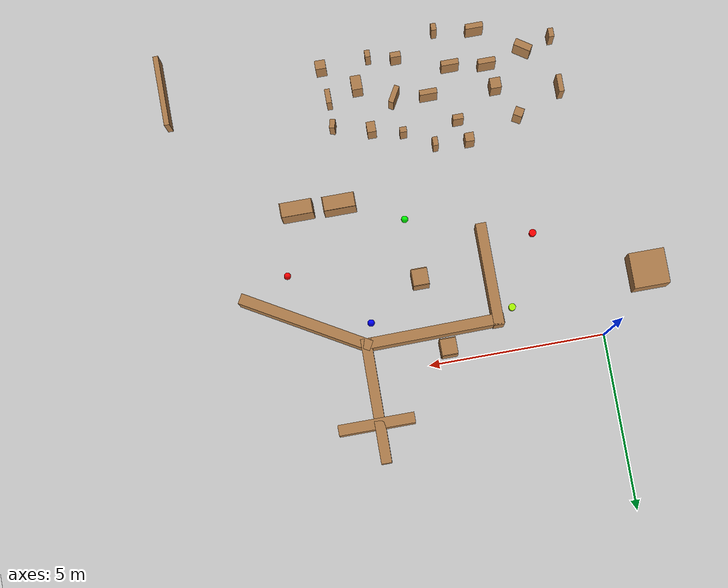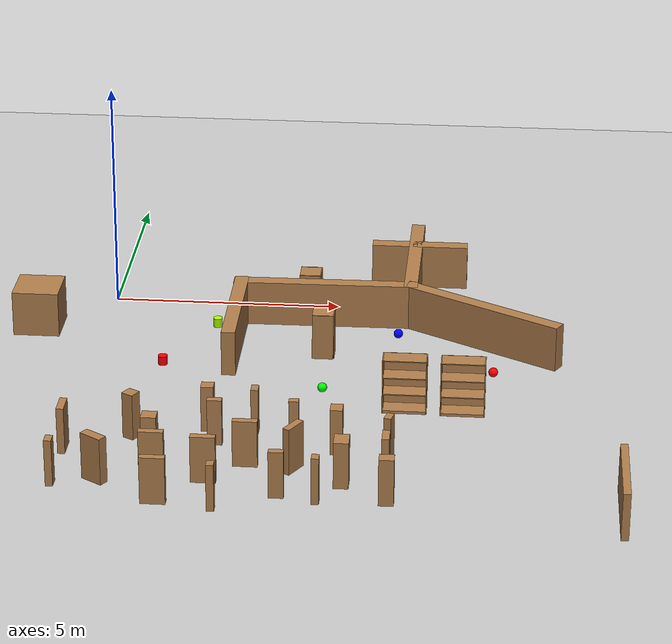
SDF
<sdf version="1.7">
 <world name="default">
  <model name="ground_plane">
   <pose>0 0 0 0 -0 0.716815</pose>
   <static>1</static>
   <link name="link">
    <collision name="collision">
     <geometry><plane><normal>0 0 1</normal><size>100 100</size></plane></geometry>
     <surface><friction><ode><mu>100</mu><mu2>50</mu2></ode></friction></surface>
    </collision>
    <visual name="visual">
     <cast_shadows>0</cast_shadows>
     <geometry><plane><normal>0 0 1</normal><size>100 100</size></plane></geometry>
     <material>
      <script><uri>file://media/materials/scripts/gazebo.material</uri><name>Gazebo/Grey</name></script>
     </material>
    </visual>
   </link>
  </model>
  <model name="t5">
   <pose>3.29174 -8.44012 0 0 -0 0</pose>
   <link name="Wall_0">
    <collision name="Wall_0_Collision">
     <geometry><box><size>0.5 0.15 1</size></box></geometry>
     <pose>0 0 0.5 0 -0 0</pose>
    </collision>
    <visual name="Wall_0_Visual">
     <pose>0 0 0.5 0 -0 0</pose>
     <geometry><box><size>0.5 0.15 1</size></box></geometry>
     <material>
      <script><uri>file://media/materials/scripts/gazebo.material</uri><name>Gazebo/Wood</name></script>
      <ambient>1 1 1 1</ambient>
     </material>
     <meta><layer>0</layer></meta>
    </visual>
    <pose>0.390596 0.875877 0 0 -0 0</pose>
   </link>
   <link name="Wall_101">
    <collision name="Wall_101_Collision">
     <geometry><box><size>0.3 0.25 1</size></box></geometry>
     <pose>0 0 0.5 0 -0 0</pose>
    </collision>
    <visual name="Wall_101_Visual">
     <pose>0 0 0.5 0 -0 0</pose>
     <geometry><box><size>0.3 0.25 1</size></box></geometry>
     <material>
      <script><uri>file://media/materials/scripts/gazebo.material</uri><name>Gazebo/Wood</name></script>
      <ambient>1 1 1 1</ambient>
     </material>
     <meta><layer>0</layer></meta>
    </visual>
    <pose>3.25747 -0.423314 0 0 -0 0</pose>
   </link>
   <link name="Wall_103">
    <collision name="Wall_103_Collision">
     <geometry><box><size>0.3 0.25 1</size></box></geometry>
     <pose>0 0 0.5 0 -0 0</pose>
    </collision>
    <visual name="Wall_103_Visual">
     <pose>0 0 0.5 0 -0 0</pose>
     <geometry><box><size>0.3 0.25 1</size></box></geometry>
     <material>
      <script><uri>file://media/materials/scripts/gazebo.material</uri><name>Gazebo/Wood</name></script>
      <ambient>1 1 1 1</ambient>
     </material>
     <meta><layer>0</layer></meta>
    </visual>
    <pose>2.15255 1.5852 0 0 -0 -1.5708</pose>
   </link>
   <link name="Wall_105">
    <collision name="Wall_105_Collision">
     <geometry><box><size>0.4 0.15 1</size></box></geometry>
     <pose>0 0 0.5 0 -0 0</pose>
    </collision>
    <visual name="Wall_105_Visual">
     <pose>0 0 0.5 0 -0 0</pose>
     <geometry><box><size>0.4 0.15 1</size></box></geometry>
     <material>
      <script><uri>file://media/materials/scripts/gazebo.material</uri><name>Gazebo/Wood</name></script>
      <ambient>1 1 1 1</ambient>
     </material>
     <meta><layer>0</layer></meta>
    </visual>
    <pose>3.19281 0.500574 0 0 -0 -1.5708</pose>
   </link>
   <link name="Wall_21">
    <collision name="Wall_21_Collision">
     <geometry><box><size>0.500017 0.2 1</size></box></geometry>
     <pose>0 0 0.5 0 -0 0</pose>
    </collision>
    <visual name="Wall_21_Visual">
     <pose>0 0 0.5 0 -0 0</pose>
     <geometry><box><size>0.500017 0.2 1</size></box></geometry>
     <material>
      <script><uri>file://media/materials/scripts/gazebo.material</uri><name>Gazebo/Wood</name></script>
      <ambient>1 1 1 1</ambient>
     </material>
     <meta><layer>0</layer></meta>
    </visual>
    <pose>-2.48871 0.02876 0 0 -0 -0.586607</pose>
   </link>
   <link name="Wall_36">
    <collision name="Wall_36_Collision">
     <geometry><box><size>0.26 0.25 1</size></box></geometry>
     <pose>0 0 0.5 0 -0 0</pose>
    </collision>
    <visual name="Wall_36_Visual">
     <pose>0 0 0.5 0 -0 0</pose>
     <geometry><box><size>0.26 0.25 1</size></box></geometry>
     <material>
      <script><uri>file://media/materials/scripts/gazebo.material</uri><name>Gazebo/Wood</name></script>
      <ambient>1 1 1 1</ambient>
     </material>
     <meta><layer>0</layer></meta>
    </visual>
    <pose>-0.523693 2.35884 0 0 -0 0</pose>
   </link>
   <link name="Wall_38">
    <collision name="Wall_38_Collision">
     <geometry><box><size>0.26 0.25 1</size></box></geometry>
     <pose>0 0 0.5 0 -0 0</pose>
    </collision>
    <visual name="Wall_38_Visual">
     <pose>0 0 0.5 0 -0 0</pose>
     <geometry><box><size>0.26 0.25 1</size></box></geometry>
     <material>
      <script><uri>file://media/materials/scripts/gazebo.material</uri><name>Gazebo/Wood</name></script>
      <ambient>1 1 1 1</ambient>
     </material>
     <meta><layer>0</layer></meta>
    </visual>
    <pose>-2.02428 1.89989 0 0 -0 -0.523599</pose>
   </link>
   <link name="Wall_54">
    <collision name="Wall_54_Collision">
     <geometry><box><size>0.5 0.15 1</size></box></geometry>
     <pose>0 0 0.5 0 -0 0</pose>
    </collision>
    <visual name="Wall_54_Visual">
     <pose>0 0 0.5 0 -0 0</pose>
     <geometry><box><size>0.5 0.15 1</size></box></geometry>
     <material>
      <script><uri>file://media/materials/scripts/gazebo.material</uri><name>Gazebo/Wood</name></script>
      <ambient>1 1 1 1</ambient>
     </material>
     <meta><layer>0</layer></meta>
    </visual>
    <pose>-1.2248 -0.767096 0 0 -0 0</pose>
   </link>
   <link name="Wall_58">
    <collision name="Wall_58_Collision">
     <geometry><box><size>0.5 0.15 1</size></box></geometry>
     <pose>0 0 0.5 0 -0 0</pose>
    </collision>
    <visual name="Wall_58_Visual">
     <pose>0 0 0.5 0 -0 0</pose>
     <geometry><box><size>0.5 0.15 1</size></box></geometry>
     <material>
      <script><uri>file://media/materials/scripts/gazebo.material</uri><name>Gazebo/Wood</name></script>
      <ambient>1 1 1 1</ambient>
     </material>
     <meta><layer>0</layer></meta>
    </visual>
    <pose>-0.357412 0.15396 0 0 -0 0</pose>
   </link>
   <link name="Wall_6">
    <collision name="Wall_6_Collision">
     <geometry><box><size>0.25 0.15 1</size></box></geometry>
     <pose>0 0 0.5 0 -0 0</pose>
    </collision>
    <visual name="Wall_6_Visual">
     <pose>0 0 0.5 0 -0 0</pose>
     <geometry><box><size>0.25 0.15 1</size></box></geometry>
     <material>
      <script><uri>file://media/materials/scripts/gazebo.material</uri><name>Gazebo/Wood</name></script>
      <ambient>1 1 1 1</ambient>
     </material>
     <meta><layer>0</layer></meta>
    </visual>
    <pose>0.445072 2.30581 0 0 -0 -1.5708</pose>
   </link>
   <link name="Wall_60">
    <collision name="Wall_60_Collision">
     <geometry><box><size>0.3 0.15 1</size></box></geometry>
     <pose>0 0 0.5 0 -0 0</pose>
    </collision>
    <visual name="Wall_60_Visual">
     <pose>0 0 0.5 0 -0 0</pose>
     <geometry><box><size>0.3 0.15 1</size></box></geometry>
     <material>
      <script><uri>file://media/materials/scripts/gazebo.material</uri><name>Gazebo/Wood</name></script>
      <ambient>1 1 1 1</ambient>
     </material>
     <meta><layer>0</layer></meta>
    </visual>
    <pose>1.1191 -0.338071 0 0 -0 0</pose>
   </link>
   <link name="Wall_62">
    <collision name="Wall_62_Collision">
     <geometry><box><size>0.2 0.15 1</size></box></geometry>
     <pose>0 0 0.5 0 -0 0</pose>
    </collision>
    <visual name="Wall_62_Visual">
     <pose>0 0 0.5 0 -0 0</pose>
     <geometry><box><size>0.2 0.15 1</size></box></geometry>
     <material>
      <script><uri>file://media/materials/scripts/gazebo.material</uri><name>Gazebo/Wood</name></script>
      <ambient>1 1 1 1</ambient>
     </material>
     <meta><layer>0</layer></meta>
    </visual>
    <pose>-0.086348 -0.9322 0 0 -0 -1.5708</pose>
   </link>
   <link name="Wall_64">
    <collision name="Wall_64_Collision">
     <geometry><box><size>0.499906 0.15 1</size></box></geometry>
     <pose>0 0 0.5 0 -0 0</pose>
    </collision>
    <visual name="Wall_64_Visual">
     <pose>0 0 0.5 0 -0 0</pose>
     <geometry><box><size>0.499906 0.15 1</size></box></geometry>
     <material>
      <script><uri>file://media/materials/scripts/gazebo.material</uri><name>Gazebo/Wood</name></script>
      <ambient>1 1 1 1</ambient>
     </material>
     <meta><layer>0</layer></meta>
    </visual>
    <pose>1.35421 0.773368 0 0 -0 -2.09455</pose>
   </link>
   <link name="Wall_66">
    <collision name="Wall_66_Collision">
     <geometry><box><size>0.2 0.15 1</size></box></geometry>
     <pose>0 0 0.5 0 -0 0</pose>
    </collision>
    <visual name="Wall_66_Visual">
     <pose>0 0 0.5 0 -0 0</pose>
     <geometry><box><size>0.2 0.15 1</size></box></geometry>
     <material>
      <script><uri>file://media/materials/scripts/gazebo.material</uri><name>Gazebo/Wood</name></script>
      <ambient>1 1 1 1</ambient>
     </material>
     <meta><layer>0</layer></meta>
    </visual>
    <pose>1.8921 -0.50407 0 0 -0 -1.5708</pose>
   </link>
   <link name="Wall_70">
    <collision name="Wall_70_Collision">
     <geometry><box><size>0.3 0.15 1</size></box></geometry>
     <pose>0 0 0.5 0 -0 0</pose>
    </collision>
    <visual name="Wall_70_Visual">
     <pose>0 0 0.5 0 -0 0</pose>
     <geometry><box><size>0.3 0.15 1</size></box></geometry>
     <material>
      <script><uri>file://media/materials/scripts/gazebo.material</uri><name>Gazebo/Wood</name></script>
      <ambient>1 1 1 1</ambient>
     </material>
     <meta><layer>0</layer></meta>
    </visual>
    <pose>-0.309733 1.73449 0 0 -0 0</pose>
   </link>
   <link name="Wall_74">
    <collision name="Wall_74_Collision">
     <geometry><box><size>0.2 0.15 1</size></box></geometry>
     <pose>0 0 0.5 0 -0 0</pose>
    </collision>
    <visual name="Wall_74_Visual">
     <pose>0 0 0.5 0 -0 0</pose>
     <geometry><box><size>0.2 0.15 1</size></box></geometry>
     <material>
      <script><uri>file://media/materials/scripts/gazebo.material</uri><name>Gazebo/Wood</name></script>
      <ambient>1 1 1 1</ambient>
     </material>
     <meta><layer>0</layer></meta>
    </visual>
    <pose>1.27676 1.82106 0 0 -0 0</pose>
   </link>
   <link name="Wall_78">
    <collision name="Wall_78_Collision">
     <geometry><box><size>0.31 0.3 1</size></box></geometry>
     <pose>0 0 0.5 0 -0 0</pose>
    </collision>
    <visual name="Wall_78_Visual">
     <pose>0 0 0.5 0 -0 0</pose>
     <geometry><box><size>0.31 0.3 1</size></box></geometry>
     <material>
      <script><uri>file://media/materials/scripts/gazebo.material</uri><name>Gazebo/Wood</name></script>
      <ambient>1 1 1 1</ambient>
     </material>
     <meta><layer>0</layer></meta>
    </visual>
    <pose>-1.52196 0.966018 0 0 -0 0</pose>
   </link>
   <link name="Wall_8">
    <collision name="Wall_8_Collision">
     <geometry><box><size>0.25 0.15 1</size></box></geometry>
     <pose>0 0 0.5 0 -0 0</pose>
    </collision>
    <visual name="Wall_8_Visual">
     <pose>0 0 0.5 0 -0 0</pose>
     <geometry><box><size>0.25 0.15 1</size></box></geometry>
     <material>
      <script><uri>file://media/materials/scripts/gazebo.material</uri><name>Gazebo/Wood</name></script>
      <ambient>1 1 1 1</ambient>
     </material>
     <meta><layer>0</layer></meta>
    </visual>
    <pose>-3.33247 -0.186061 0 0 -0 -1.5708</pose>
   </link>
   <link name="Wall_80">
    <collision name="Wall_80_Collision">
     <geometry><box><size>0.4 0.3 1</size></box></geometry>
     <pose>0 0 0.5 0 -0 0</pose>
    </collision>
    <visual name="Wall_80_Visual">
     <pose>0 0 0.5 0 -0 0</pose>
     <geometry><box><size>0.4 0.3 1</size></box></geometry>
     <material>
      <script><uri>file://media/materials/scripts/gazebo.material</uri><name>Gazebo/Wood</name></script>
      <ambient>1 1 1 1</ambient>
     </material>
     <meta><layer>0</layer></meta>
    </visual>
    <pose>2.34433 0.262311 0 0 -0 1.5708</pose>
   </link>
   <link name="Wall_95">
    <collision name="Wall_95_Collision">
     <geometry><box><size>0.250424 0.15 1</size></box></geometry>
     <pose>0 0 0.5 0 -0 0</pose>
    </collision>
    <visual name="Wall_95_Visual">
     <pose>0 0 0.5 0 -0 0</pose>
     <geometry><box><size>0.250424 0.15 1</size></box></geometry>
     <material>
      <script><uri>file://media/materials/scripts/gazebo.material</uri><name>Gazebo/Wood</name></script>
      <ambient>1 1 1 1</ambient>
     </material>
     <meta><layer>0</layer></meta>
    </visual>
    <pose>3.21102 1.29922 0 0 -0 -1.83268</pose>
   </link>
   <link name="Wall_97">
    <collision name="Wall_97_Collision">
     <geometry><box><size>0.5 0.15 1</size></box></geometry>
     <pose>0 0 0.5 0 -0 0</pose>
    </collision>
    <visual name="Wall_97_Visual">
     <pose>0 0 0.5 0 -0 0</pose>
     <geometry><box><size>0.5 0.15 1</size></box></geometry>
     <material>
      <script><uri>file://media/materials/scripts/gazebo.material</uri><name>Gazebo/Wood</name></script>
      <ambient>1 1 1 1</ambient>
     </material>
     <meta><layer>0</layer></meta>
    </visual>
    <pose>-1.39392 0.285977 0 0 -0 0</pose>
   </link>
   <link name="Wall_99">
    <collision name="Wall_99_Collision">
     <geometry><box><size>0.5 0.15 1</size></box></geometry>
     <pose>0 0 0.5 0 -0 0</pose>
    </collision>
    <visual name="Wall_99_Visual">
     <pose>0 0 0.5 0 -0 0</pose>
     <geometry><box><size>0.5 0.15 1</size></box></geometry>
     <material>
      <script><uri>file://media/materials/scripts/gazebo.material</uri><name>Gazebo/Wood</name></script>
      <ambient>1 1 1 1</ambient>
     </material>
     <meta><layer>0</layer></meta>
    </visual>
    <pose>-3.32186 1.2883 0 0 -0 -1.5708</pose>
   </link>
   <static>1</static>
  </model>
  <model name="sphere_g_0">
   <link name="link_1">
    <pose>0 0 0.1 0 -0 0</pose>
    <inertial>
     <mass>1</mass>
     <inertia><ixx>0.1</ixx><ixy>0</ixy><ixz>0</ixz><iyy>0.1</iyy><iyz>0</iyz><izz>0.1</izz></inertia>
    </inertial>
    <visual name="visual">
     <geometry><sphere><radius>0.1</radius></sphere></geometry>
     <material>
      <lighting>1</lighting>
      <script><uri>file://media/materials/scripts/gazebo.material</uri><name>Gazebo/Grey</name></script>
      <ambient>0 1 0 1</ambient>
      <diffuse>0 1 0 1</diffuse>
      <specular>0 0 0 1</specular>
      <emissive>0 0 0 1</emissive>
      <shader type="vertex"><normal_map>__default__</normal_map></shader>
     </material>
    </visual>
    <collision name="collision">
     <geometry><sphere><radius>0.1</radius></sphere></geometry>
     <surface>
      <friction>
       <ode><mu>1</mu><mu2>1</mu2><fdir1>0 0 0</fdir1><slip1>0</slip1><slip2>0</slip2></ode>
       <torsional>
        <coefficient>1</coefficient>
        <patch_radius>0</patch_radius>
        <surface_radius>0</surface_radius>
        <use_patch_radius>1</use_patch_radius>
        <ode><slip>0</slip></ode>
       </torsional>
      </friction>
      <bounce><restitution_coefficient>0</restitution_coefficient><threshold>1e+06</threshold></bounce>
      <contact>
       <collide_without_contact>0</collide_without_contact>
       <collide_without_contact_bitmask>1</collide_without_contact_bitmask>
       <collide_bitmask>1</collide_bitmask>
       <ode>
        <soft_cfm>0</soft_cfm>
        <soft_erp>0.2</soft_erp>
        <kp>1e+13</kp>
        <kd>1</kd>
        <max_vel>0.01</max_vel>
        <min_depth>0</min_depth>
       </ode>
       <bullet>
        <split_impulse>1</split_impulse>
        <split_impulse_penetration_threshold>-0.01</split_impulse_penetration_threshold>
        <soft_cfm>0</soft_cfm>
        <soft_erp>0.2</soft_erp>
        <kp>1e+13</kp>
        <kd>1</kd>
       </bullet>
      </contact>
     </surface>
    </collision>
   </link>
   <static>1</static>
   <pose>4.95524 -4.22643 0 0 -0 0</pose>
  </model>
  <model name="sphere_r_0">
   <link name="link_1">
    <pose>0 0 0.1 0 -0 0</pose>
    <inertial>
     <mass>1</mass>
     <inertia><ixx>0.1</ixx><ixy>0</ixy><ixz>0</ixz><iyy>0.1</iyy><iyz>0</iyz><izz>0.1</izz></inertia>
    </inertial>
    <visual name="visual">
     <geometry><sphere><radius>0.1</radius></sphere></geometry>
     <material>
      <lighting>1</lighting>
      <script><uri>file://media/materials/scripts/gazebo.material</uri><name>Gazebo/Grey</name></script>
      <ambient>1 0 0 1</ambient>
      <diffuse>1 0 0 1</diffuse>
      <specular>0 0 0 1</specular>
      <emissive>0 0 0 1</emissive>
      <shader type="vertex"><normal_map>__default__</normal_map></shader>
     </material>
    </visual>
    <collision name="collision">
     <geometry><sphere><radius>0.1</radius></sphere></geometry>
     <surface>
      <friction>
       <ode><mu>1</mu><mu2>1</mu2><fdir1>0 0 0</fdir1><slip1>0</slip1><slip2>0</slip2></ode>
       <torsional>
        <coefficient>1</coefficient>
        <patch_radius>0</patch_radius>
        <surface_radius>0</surface_radius>
        <use_patch_radius>1</use_patch_radius>
        <ode><slip>0</slip></ode>
       </torsional>
      </friction>
      <bounce><restitution_coefficient>0</restitution_coefficient><threshold>1e+06</threshold></bounce>
      <contact>
       <collide_without_contact>0</collide_without_contact>
       <collide_without_contact_bitmask>1</collide_without_contact_bitmask>
       <collide_bitmask>1</collide_bitmask>
       <ode>
        <soft_cfm>0</soft_cfm>
        <soft_erp>0.2</soft_erp>
        <kp>1e+13</kp>
        <kd>1</kd>
        <max_vel>0.01</max_vel>
        <min_depth>0</min_depth>
       </ode>
       <bullet>
        <split_impulse>1</split_impulse>
        <split_impulse_penetration_threshold>-0.01</split_impulse_penetration_threshold>
        <soft_cfm>0</soft_cfm>
        <soft_erp>0.2</soft_erp>
        <kp>1e+13</kp>
        <kd>1</kd>
       </bullet>
      </contact>
     </surface>
    </collision>
   </link>
   <static>1</static>
   <pose>8.51197 -3.21146 0 0 -0 0</pose>
  </model>
  <model name="sphere_b">
   <link name="link_1">
    <pose>0 0 0.1 0 -0 0</pose>
    <inertial>
     <mass>1</mass>
     <inertia><ixx>0.1</ixx><ixy>0</ixy><ixz>0</ixz><iyy>0.1</iyy><iyz>0</iyz><izz>0.1</izz></inertia>
    </inertial>
    <visual name="visual">
     <geometry><sphere><radius>0.1</radius></sphere></geometry>
     <material>
      <lighting>1</lighting>
      <script><uri>file://media/materials/scripts/gazebo.material</uri><name>Gazebo/Grey</name></script>
      <ambient>0 0 1 1</ambient>
      <diffuse>0 0 1 1</diffuse>
      <specular>0 0 0 1</specular>
      <emissive>0 0 0 1</emissive>
      <shader type="vertex"><normal_map>__default__</normal_map></shader>
     </material>
    </visual>
    <collision name="collision">
     <geometry><sphere><radius>0.1</radius></sphere></geometry>
     <surface>
      <friction>
       <ode><mu>1</mu><mu2>1</mu2><fdir1>0 0 0</fdir1><slip1>0</slip1><slip2>0</slip2></ode>
       <torsional>
        <coefficient>1</coefficient>
        <patch_radius>0</patch_radius>
        <surface_radius>0</surface_radius>
        <use_patch_radius>1</use_patch_radius>
        <ode><slip>0</slip></ode>
       </torsional>
      </friction>
      <bounce><restitution_coefficient>0</restitution_coefficient><threshold>1e+06</threshold></bounce>
      <contact>
       <collide_without_contact>0</collide_without_contact>
       <collide_without_contact_bitmask>1</collide_without_contact_bitmask>
       <collide_bitmask>1</collide_bitmask>
       <ode>
        <soft_cfm>0</soft_cfm>
        <soft_erp>0.2</soft_erp>
        <kp>1e+13</kp>
        <kd>1</kd>
        <max_vel>0.01</max_vel>
        <min_depth>0</min_depth>
       </ode>
       <bullet>
        <split_impulse>1</split_impulse>
        <split_impulse_penetration_threshold>-0.01</split_impulse_penetration_threshold>
        <soft_cfm>0</soft_cfm>
        <soft_erp>0.2</soft_erp>
        <kp>1e+13</kp>
        <kd>1</kd>
       </bullet>
      </contact>
     </surface>
    </collision>
   </link>
   <static>1</static>
   <pose>6.41108 -1.48203 0 0 -0 0</pose>
  </model>
  <model name="cylinder_r">
   <link name="link_0">
    <pose>0 0 0.1 0 -0 0</pose>
    <inertial>
     <mass>1</mass>
     <inertia><ixx>0.145833</ixx><ixy>0</ixy><ixz>0</ixz><iyy>0.145833</iyy><iyz>0</iyz><izz>0.125</izz></inertia>
    </inertial>
    <visual name="visual">
     <geometry><cylinder><radius>0.1</radius><length>0.2</length></cylinder></geometry>
     <material>
      <lighting>1</lighting>
      <script><uri>file://media/materials/scripts/gazebo.material</uri><name>Gazebo/Grey</name></script>
      <ambient>1 0 0 1</ambient>
      <diffuse>1 0 0 1</diffuse>
      <specular>0 0 0 1</specular>
      <emissive>0 0 0 1</emissive>
      <shader type="vertex"><normal_map>__default__</normal_map></shader>
     </material>
    </visual>
    <collision name="collision">
     <geometry><cylinder><radius>0.1</radius><length>0.2</length></cylinder></geometry>
     <surface>
      <friction>
       <ode><mu>1</mu><mu2>1</mu2><fdir1>0 0 0</fdir1><slip1>0</slip1><slip2>0</slip2></ode>
       <torsional>
        <coefficient>1</coefficient>
        <patch_radius>0</patch_radius>
        <surface_radius>0</surface_radius>
        <use_patch_radius>1</use_patch_radius>
        <ode><slip>0</slip></ode>
       </torsional>
      </friction>
      <bounce><restitution_coefficient>0</restitution_coefficient><threshold>1e+06</threshold></bounce>
      <contact>
       <collide_without_contact>0</collide_without_contact>
       <collide_without_contact_bitmask>1</collide_without_contact_bitmask>
       <collide_bitmask>1</collide_bitmask>
       <ode>
        <soft_cfm>0</soft_cfm>
        <soft_erp>0.2</soft_erp>
        <kp>1e+13</kp>
        <kd>1</kd>
        <max_vel>0.01</max_vel>
        <min_depth>0</min_depth>
       </ode>
       <bullet>
        <split_impulse>1</split_impulse>
        <split_impulse_penetration_threshold>-0.01</split_impulse_penetration_threshold>
        <soft_cfm>0</soft_cfm>
        <soft_erp>0.2</soft_erp>
        <kp>1e+13</kp>
        <kd>1</kd>
       </bullet>
      </contact>
     </surface>
    </collision>
   </link>
   <static>1</static>
   <pose>1.45195 -3.19259 0 0 -0 0</pose>
  </model>
  <model name="cylinder_gy_0">
   <link name="link_0">
    <pose>0 0 0.1 0 -0 0</pose>
    <inertial>
     <mass>1</mass>
     <inertia><ixx>0.145833</ixx><ixy>0</ixy><ixz>0</ixz><iyy>0.145833</iyy><iyz>0</iyz><izz>0.125</izz></inertia>
    </inertial>
    <visual name="visual">
     <geometry><cylinder><radius>0.1</radius><length>0.2</length></cylinder></geometry>
     <material>
      <lighting>1</lighting>
      <script><uri>file://media/materials/scripts/gazebo.material</uri><name>Gazebo/Grey</name></script>
      <ambient>0.675 1 0 1</ambient>
      <diffuse>0.675 1 0 1</diffuse>
      <specular>0 0 0 1</specular>
      <emissive>0 0 0 1</emissive>
      <shader type="vertex"><normal_map>__default__</normal_map></shader>
     </material>
    </visual>
    <collision name="collision">
     <geometry><cylinder><radius>0.1</radius><length>0.2</length></cylinder></geometry>
     <surface>
      <friction>
       <ode><mu>1</mu><mu2>1</mu2><fdir1>0 0 0</fdir1><slip1>0</slip1><slip2>0</slip2></ode>
       <torsional>
        <coefficient>1</coefficient>
        <patch_radius>0</patch_radius>
        <surface_radius>0</surface_radius>
        <use_patch_radius>1</use_patch_radius>
        <ode><slip>0</slip></ode>
       </torsional>
      </friction>
      <bounce><restitution_coefficient>0</restitution_coefficient><threshold>1e+06</threshold></bounce>
      <contact>
       <collide_without_contact>0</collide_without_contact>
       <collide_without_contact_bitmask>1</collide_without_contact_bitmask>
       <collide_bitmask>1</collide_bitmask>
       <ode>
        <soft_cfm>0</soft_cfm>
        <soft_erp>0.2</soft_erp>
        <kp>1e+13</kp>
        <kd>1</kd>
        <max_vel>0.01</max_vel>
        <min_depth>0</min_depth>
       </ode>
       <bullet>
        <split_impulse>1</split_impulse>
        <split_impulse_penetration_threshold>-0.01</split_impulse_penetration_threshold>
        <soft_cfm>0</soft_cfm>
        <soft_erp>0.2</soft_erp>
        <kp>1e+13</kp>
        <kd>1</kd>
       </bullet>
      </contact>
     </surface>
    </collision>
   </link>
   <static>1</static>
   <pose>2.40907 -1.21518 0 0 -0 0</pose>
  </model>
  <model name="obs1x1">
   <pose>-1.11023 -1.12854 0 0 -0 0</pose>
   <link name="Wall_0">
    <collision name="Wall_0_Collision">
     <geometry><box><size>1.01 1 1</size></box></geometry>
     <pose>0 0 0.5 0 -0 0</pose>
    </collision>
    <visual name="Wall_0_Visual">
     <pose>0 0 0.5 0 -0 0</pose>
     <geometry><box><size>1.01 1 1</size></box></geometry>
     <material>
      <script><uri>file://media/materials/scripts/gazebo.material</uri><name>Gazebo/Wood</name></script>
      <ambient>1 1 1 1</ambient>
     </material>
     <meta><layer>0</layer></meta>
    </visual>
    <pose>-0.39 -0.41 0 0 -0 0</pose>
   </link>
   <static>1</static>
  </model>
  <model name="Untitled58">
   <pose>5.583 -3.70948 0 0 -0 0</pose>
   <link name="Wall_1">
    <collision name="Wall_1_Collision">
     <geometry><box><size>3.5 0.3 1</size></box></geometry>
     <pose>0 0 0.5 0 -0 0</pose>
    </collision>
    <visual name="Wall_1_Visual">
     <pose>0 0 0.5 0 -0 0</pose>
     <geometry><box><size>3.5 0.3 1</size></box></geometry>
     <material>
      <script><uri>file://media/materials/scripts/gazebo.material</uri><name>Gazebo/Wood</name></script>
      <ambient>1 1 1 1</ambient>
     </material>
     <meta><layer>0</layer></meta>
    </visual>
    <pose>1.0695 4.46248 0 0 -0 -1.57798</pose>
   </link>
   <link name="Wall_10">
    <collision name="Wall_10_Collision">
     <geometry><box><size>3.9 0.3 1</size></box></geometry>
     <pose>0 0 0.5 0 -0 0</pose>
    </collision>
    <visual name="Wall_10_Visual">
     <pose>0 0 0.5 0 -0 0</pose>
     <geometry><box><size>3.9 0.3 1</size></box></geometry>
     <material>
      <script><uri>file://media/materials/scripts/gazebo.material</uri><name>Gazebo/Wood</name></script>
      <ambient>1 1 1 1</ambient>
     </material>
     <meta><layer>0</layer></meta>
    </visual>
    <pose>2.617 1.96248 0 0 -0 -0.523556</pose>
   </link>
   <link name="Wall_2">
    <collision name="Wall_2_Collision">
     <geometry><box><size>4.04628 0.3 1</size></box></geometry>
     <pose>0 0 0.5 0 -0 0</pose>
    </collision>
    <visual name="Wall_2_Visual">
     <pose>0 0 0.5 0 -0 0</pose>
     <geometry><box><size>4.04628 0.3 1</size></box></geometry>
     <material>
      <script><uri>file://media/materials/scripts/gazebo.material</uri><name>Gazebo/Wood</name></script>
      <ambient>1 1 1 1</ambient>
     </material>
     <meta><layer>0</layer></meta>
    </visual>
    <pose>-0.815 2.83948 0 0 -0 -3.12931</pose>
   </link>
   <link name="Wall_4">
    <collision name="Wall_4_Collision">
     <geometry><box><size>2.9 0.3 1</size></box></geometry>
     <pose>0 0 0.5 0 -0 0</pose>
    </collision>
    <visual name="Wall_4_Visual">
     <pose>0 0 0.5 0 -0 0</pose>
     <geometry><box><size>2.9 0.3 1</size></box></geometry>
     <material>
      <script><uri>file://media/materials/scripts/gazebo.material</uri><name>Gazebo/Wood</name></script>
      <ambient>1 1 1 1</ambient>
     </material>
     <meta><layer>0</layer></meta>
    </visual>
    <pose>-2.675 1.54148 0 0 -0 -1.5708</pose>
   </link>
   <link name="Wall_6">
    <collision name="Wall_6_Collision">
     <geometry><box><size>2.15 0.3 1</size></box></geometry>
     <pose>0 0 0.5 0 -0 0</pose>
    </collision>
    <visual name="Wall_6_Visual">
     <pose>0 0 0.5 0 -0 0</pose>
     <geometry><box><size>2.15 0.3 1</size></box></geometry>
     <material>
      <script><uri>file://media/materials/scripts/gazebo.material</uri><name>Gazebo/Wood</name></script>
      <ambient>1 1 1 1</ambient>
     </material>
     <meta><layer>0</layer></meta>
    </visual>
    <pose>1.166 5.09548 0 0 -0 0</pose>
   </link>
   <link name="Wall_8">
    <collision name="Wall_8_Collision">
     <geometry><box><size>2 0.15 1</size></box></geometry>
     <pose>0 0 0.5 0 -0 0</pose>
    </collision>
    <visual name="Wall_8_Visual">
     <pose>0 0 0.5 0 -0 0</pose>
     <geometry><box><size>2 0.15 1</size></box></geometry>
     <material>
      <script><uri>file://media/materials/scripts/gazebo.material</uri><name>Gazebo/Wood</name></script>
      <ambient>1 1 1 1</ambient>
     </material>
     <meta><layer>0</layer></meta>
    </visual>
    <pose>5.508 -5.21352 0 0 -0 -1.5708</pose>
   </link>
   <static>1</static>
  </model>
  <model name="cabinet_0">
   <static>1</static>
   <link name="cabinet_bottom_plate">
    <inertial>
     <pose>0 0 -1 0 -0 0</pose>
     <inertia><ixx>2.05</ixx><ixy>0</ixy><ixz>0</ixz><iyy>2.05</iyy><iyz>0</iyz><izz>2.05</izz></inertia>
     <mass>25</mass>
    </inertial>
    <collision name="cabinet_bottom_plate_geom">
     <pose>0 0 0.01 0 -0 0</pose>
     <geometry><box><size>0.45 0.45 0.02</size></box></geometry>
    </collision>
    <visual name="cabinet_bottom_plate_geom_visual">
     <pose>0 0 0.01 0 -0 0</pose>
     <geometry><box><size>0.45 0.45 0.02</size></box></geometry>
     <material>
      <script><uri>file://media/materials/scripts/gazebo.material</uri><name>Gazebo/Wood</name></script>
     </material>
    </visual>
    <collision name="cabinet_bottom_plate_geom_cabinet_back_plate">
     <pose>0.235 0 0.51 0 -0 0</pose>
     <geometry><box><size>0.02 0.45 1.02</size></box></geometry>
    </collision>
    <visual name="cabinet_bottom_plate_geom_cabinet_back_plate_visual">
     <pose>0.235 0 0.51 0 -0 0</pose>
     <geometry><box><size>0.02 0.45 1.02</size></box></geometry>
     <material>
      <script><uri>file://media/materials/scripts/gazebo.material</uri><name>Gazebo/Wood</name></script>
     </material>
    </visual>
    <collision name="cabinet_bottom_plate_geom_cabinet_left_plate">
     <pose>0 0.235 0.51 0 -0 0</pose>
     <geometry><box><size>0.45 0.02 1.02</size></box></geometry>
    </collision>
    <visual name="cabinet_bottom_plate_geom_cabinet_left_plate_visual">
     <pose>0 0.235 0.51 0 -0 0</pose>
     <geometry><box><size>0.45 0.02 1.02</size></box></geometry>
     <material>
      <script><uri>file://media/materials/scripts/gazebo.material</uri><name>Gazebo/Wood</name></script>
     </material>
    </visual>
    <collision name="cabinet_bottom_plate_geom_cabinet_middle_plate">
     <pose>0 0 0.51 0 -0 0</pose>
     <geometry><box><size>0.45 0.45 0.02</size></box></geometry>
    </collision>
    <visual name="cabinet_bottom_plate_geom_cabinet_middle_plate_visual">
     <pose>0 0 0.51 0 -0 0</pose>
     <geometry><box><size>0.45 0.45 0.02</size></box></geometry>
     <material>
      <script><uri>file://media/materials/scripts/gazebo.material</uri><name>Gazebo/Wood</name></script>
     </material>
    </visual>
    <collision name="cabinet_bottom_plate_geom_cabinet_right_plate">
     <pose>0 -0.235 0.51 0 -0 0</pose>
     <geometry><box><size>0.45 0.02 1.02</size></box></geometry>
    </collision>
    <visual name="cabinet_bottom_plate_geom_cabinet_right_plate_visual">
     <pose>0 -0.235 0.51 0 -0 0</pose>
     <geometry><box><size>0.45 0.02 1.02</size></box></geometry>
     <material>
      <script><uri>file://media/materials/scripts/gazebo.material</uri><name>Gazebo/Wood</name></script>
     </material>
    </visual>
    <collision name="cabinet_bottom_plate_geom_cabinet_top_plate">
     <pose>0 0 1.01 0 -0 0</pose>
     <geometry><box><size>0.45 0.45 0.02</size></box></geometry>
    </collision>
    <visual name="cabinet_bottom_plate_geom_cabinet_top_plate_visual">
     <pose>0 0 1.01 0 -0 0</pose>
     <geometry><box><size>0.45 0.45 0.02</size></box></geometry>
     <material>
      <script><uri>file://media/materials/scripts/gazebo.material</uri><name>Gazebo/Wood</name></script>
     </material>
    </visual>
   </link>
   <pose>4.83796 -2.42933 0 0 -0 0</pose>
  </model>
  <model name="bookshelf_1">
   <static>1</static>
   <link name="link">
    <inertial><mass>1</mass></inertial>
    <collision name="back">
     <pose>0 0.005 0.6 0 -0 0</pose>
     <geometry><box><size>0.9 0.01 1.2</size></box></geometry>
    </collision>
    <visual name="visual1">
     <pose>0 0.005 0.6 0 -0 0</pose>
     <geometry><box><size>0.9 0.01 1.2</size></box></geometry>
     <material>
      <script><uri>file://media/materials/scripts/gazebo.material</uri><name>Gazebo/Wood</name></script>
     </material>
    </visual>
    <collision name="left_side">
     <pose>0.45 -0.195 0.6 0 -0 0</pose>
     <geometry><box><size>0.02 0.4 1.2</size></box></geometry>
    </collision>
    <visual name="visual2">
     <pose>0.45 -0.195 0.6 0 -0 0</pose>
     <geometry><box><size>0.02 0.4 1.2</size></box></geometry>
     <material>
      <script><uri>file://media/materials/scripts/gazebo.material</uri><name>Gazebo/Wood</name></script>
     </material>
    </visual>
    <collision name="right_side">
     <pose>-0.45 -0.195 0.6 0 -0 0</pose>
     <geometry><box><size>0.02 0.4 1.2</size></box></geometry>
    </collision>
    <visual name="visual3">
     <pose>-0.45 -0.195 0.6 0 -0 0</pose>
     <geometry><box><size>0.02 0.4 1.2</size></box></geometry>
     <material>
      <script><uri>file://media/materials/scripts/gazebo.material</uri><name>Gazebo/Wood</name></script>
     </material>
    </visual>
    <collision name="bottom">
     <pose>0 -0.195 0.03 0 -0 0</pose>
     <geometry><box><size>0.88 0.4 0.06</size></box></geometry>
    </collision>
    <visual name="visual4">
     <pose>0 -0.195 0.03 0 -0 0</pose>
     <geometry><box><size>0.88 0.4 0.06</size></box></geometry>
     <material>
      <script><uri>file://media/materials/scripts/gazebo.material</uri><name>Gazebo/Wood</name></script>
     </material>
    </visual>
    <collision name="top">
     <pose>0 -0.195 1.19 0 -0 0</pose>
     <geometry><box><size>0.88 0.4 0.02</size></box></geometry>
    </collision>
    <visual name="visual5">
     <pose>0 -0.195 1.19 0 -0 0</pose>
     <geometry><box><size>0.88 0.4 0.02</size></box></geometry>
     <material>
      <script><uri>file://media/materials/scripts/gazebo.material</uri><name>Gazebo/Wood</name></script>
     </material>
    </visual>
    <collision name="low_shelf">
     <pose>0 -0.195 0.43 0 -0 0</pose>
     <geometry><box><size>0.88 0.4 0.02</size></box></geometry>
    </collision>
    <visual name="visual6">
     <pose>0 -0.195 0.43 0 -0 0</pose>
     <geometry><box><size>0.88 0.4 0.02</size></box></geometry>
     <material>
      <script><uri>file://media/materials/scripts/gazebo.material</uri><name>Gazebo/Wood</name></script>
     </material>
    </visual>
    <collision name="high_shelf">
     <pose>0 -0.195 0.8 0 -0 0</pose>
     <geometry><box><size>0.88 0.4 0.02</size></box></geometry>
    </collision>
    <visual name="visual7">
     <pose>0 -0.195 0.8 0 -0 0</pose>
     <geometry><box><size>0.88 0.4 0.02</size></box></geometry>
     <material>
      <script><uri>file://media/materials/scripts/gazebo.material</uri><name>Gazebo/Wood</name></script>
     </material>
    </visual>
   </link>
   <pose>7.90664 -4.72853 0 0 -0 0</pose>
  </model>
  <model name="bookshelf_2">
   <static>1</static>
   <link name="link">
    <inertial><mass>1</mass></inertial>
    <collision name="back">
     <pose>0 0.005 0.6 0 -0 0</pose>
     <geometry><box><size>0.9 0.01 1.2</size></box></geometry>
    </collision>
    <visual name="visual1">
     <pose>0 0.005 0.6 0 -0 0</pose>
     <geometry><box><size>0.9 0.01 1.2</size></box></geometry>
     <material>
      <script><uri>file://media/materials/scripts/gazebo.material</uri><name>Gazebo/Wood</name></script>
     </material>
    </visual>
    <collision name="left_side">
     <pose>0.45 -0.195 0.6 0 -0 0</pose>
     <geometry><box><size>0.02 0.4 1.2</size></box></geometry>
    </collision>
    <visual name="visual2">
     <pose>0.45 -0.195 0.6 0 -0 0</pose>
     <geometry><box><size>0.02 0.4 1.2</size></box></geometry>
     <material>
      <script><uri>file://media/materials/scripts/gazebo.material</uri><name>Gazebo/Wood</name></script>
     </material>
    </visual>
    <collision name="right_side">
     <pose>-0.45 -0.195 0.6 0 -0 0</pose>
     <geometry><box><size>0.02 0.4 1.2</size></box></geometry>
    </collision>
    <visual name="visual3">
     <pose>-0.45 -0.195 0.6 0 -0 0</pose>
     <geometry><box><size>0.02 0.4 1.2</size></box></geometry>
     <material>
      <script><uri>file://media/materials/scripts/gazebo.material</uri><name>Gazebo/Wood</name></script>
     </material>
    </visual>
    <collision name="bottom">
     <pose>0 -0.195 0.03 0 -0 0</pose>
     <geometry><box><size>0.88 0.4 0.06</size></box></geometry>
    </collision>
    <visual name="visual4">
     <pose>0 -0.195 0.03 0 -0 0</pose>
     <geometry><box><size>0.88 0.4 0.06</size></box></geometry>
     <material>
      <script><uri>file://media/materials/scripts/gazebo.material</uri><name>Gazebo/Wood</name></script>
     </material>
    </visual>
    <collision name="top">
     <pose>0 -0.195 1.19 0 -0 0</pose>
     <geometry><box><size>0.88 0.4 0.02</size></box></geometry>
    </collision>
    <visual name="visual5">
     <pose>0 -0.195 1.19 0 -0 0</pose>
     <geometry><box><size>0.88 0.4 0.02</size></box></geometry>
     <material>
      <script><uri>file://media/materials/scripts/gazebo.material</uri><name>Gazebo/Wood</name></script>
     </material>
    </visual>
    <collision name="low_shelf">
     <pose>0 -0.195 0.43 0 -0 0</pose>
     <geometry><box><size>0.88 0.4 0.02</size></box></geometry>
    </collision>
    <visual name="visual6">
     <pose>0 -0.195 0.43 0 -0 0</pose>
     <geometry><box><size>0.88 0.4 0.02</size></box></geometry>
     <material>
      <script><uri>file://media/materials/scripts/gazebo.material</uri><name>Gazebo/Wood</name></script>
     </material>
    </visual>
    <collision name="high_shelf">
     <pose>0 -0.195 0.8 0 -0 0</pose>
     <geometry><box><size>0.88 0.4 0.02</size></box></geometry>
    </collision>
    <visual name="visual7">
     <pose>0 -0.195 0.8 0 -0 0</pose>
     <geometry><box><size>0.88 0.4 0.02</size></box></geometry>
     <material>
      <script><uri>file://media/materials/scripts/gazebo.material</uri><name>Gazebo/Wood</name></script>
     </material>
    </visual>
   </link>
   <pose>6.70723 -4.69925 0 0 -0 0</pose>
  </model>
  <model name="cabinet_4">
   <static>1</static>
   <link name="cabinet_bottom_plate">
    <inertial>
     <pose>0 0 -1 0 -0 0</pose>
     <inertia><ixx>2.05</ixx><ixy>0</ixy><ixz>0</ixz><iyy>2.05</iyy><iyz>0</iyz><izz>2.05</izz></inertia>
     <mass>25</mass>
    </inertial>
    <collision name="cabinet_bottom_plate_geom">
     <pose>0 0 0.01 0 -0 0</pose>
     <geometry><box><size>0.45 0.45 0.02</size></box></geometry>
    </collision>
    <visual name="cabinet_bottom_plate_geom_visual">
     <pose>0 0 0.01 0 -0 0</pose>
     <geometry><box><size>0.45 0.45 0.02</size></box></geometry>
     <material>
      <script><uri>file://media/materials/scripts/gazebo.material</uri><name>Gazebo/Wood</name></script>
     </material>
    </visual>
    <collision name="cabinet_bottom_plate_geom_cabinet_back_plate">
     <pose>0.235 0 0.51 0 -0 0</pose>
     <geometry><box><size>0.02 0.45 1.02</size></box></geometry>
    </collision>
    <visual name="cabinet_bottom_plate_geom_cabinet_back_plate_visual">
     <pose>0.235 0 0.51 0 -0 0</pose>
     <geometry><box><size>0.02 0.45 1.02</size></box></geometry>
     <material>
      <script><uri>file://media/materials/scripts/gazebo.material</uri><name>Gazebo/Wood</name></script>
     </material>
    </visual>
    <collision name="cabinet_bottom_plate_geom_cabinet_left_plate">
     <pose>0 0.235 0.51 0 -0 0</pose>
     <geometry><box><size>0.45 0.02 1.02</size></box></geometry>
    </collision>
    <visual name="cabinet_bottom_plate_geom_cabinet_left_plate_visual">
     <pose>0 0.235 0.51 0 -0 0</pose>
     <geometry><box><size>0.45 0.02 1.02</size></box></geometry>
     <material>
      <script><uri>file://media/materials/scripts/gazebo.material</uri><name>Gazebo/Wood</name></script>
     </material>
    </visual>
    <collision name="cabinet_bottom_plate_geom_cabinet_middle_plate">
     <pose>0 0 0.51 0 -0 0</pose>
     <geometry><box><size>0.45 0.45 0.02</size></box></geometry>
    </collision>
    <visual name="cabinet_bottom_plate_geom_cabinet_middle_plate_visual">
     <pose>0 0 0.51 0 -0 0</pose>
     <geometry><box><size>0.45 0.45 0.02</size></box></geometry>
     <material>
      <script><uri>file://media/materials/scripts/gazebo.material</uri><name>Gazebo/Wood</name></script>
     </material>
    </visual>
    <collision name="cabinet_bottom_plate_geom_cabinet_right_plate">
     <pose>0 -0.235 0.51 0 -0 0</pose>
     <geometry><box><size>0.45 0.02 1.02</size></box></geometry>
    </collision>
    <visual name="cabinet_bottom_plate_geom_cabinet_right_plate_visual">
     <pose>0 -0.235 0.51 0 -0 0</pose>
     <geometry><box><size>0.45 0.02 1.02</size></box></geometry>
     <material>
      <script><uri>file://media/materials/scripts/gazebo.material</uri><name>Gazebo/Wood</name></script>
     </material>
    </visual>
    <collision name="cabinet_bottom_plate_geom_cabinet_top_plate">
     <pose>0 0 1.01 0 -0 0</pose>
     <geometry><box><size>0.45 0.45 0.02</size></box></geometry>
    </collision>
    <visual name="cabinet_bottom_plate_geom_cabinet_top_plate_visual">
     <pose>0 0 1.01 0 -0 0</pose>
     <geometry><box><size>0.45 0.45 0.02</size></box></geometry>
     <material>
      <script><uri>file://media/materials/scripts/gazebo.material</uri><name>Gazebo/Wood</name></script>
     </material>
    </visual>
   </link>
   <pose>4.39831 -0.371184 0 0 -0 0</pose>
  </model>
 </world>
</sdf>
